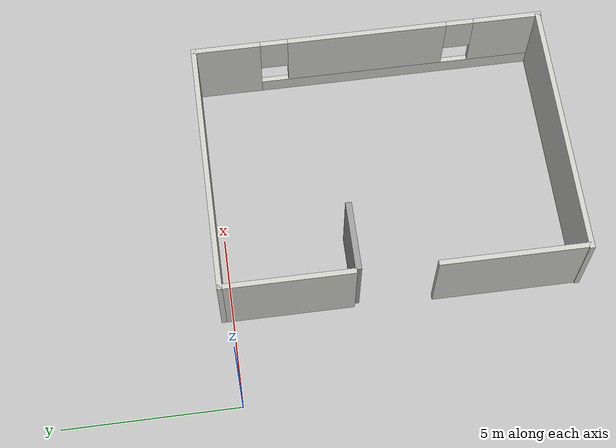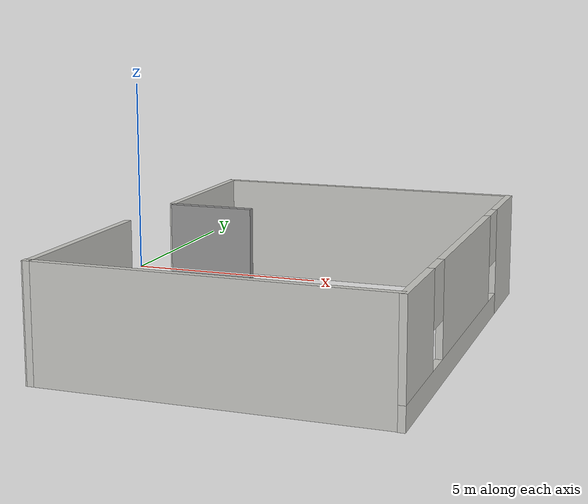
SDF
<?xml version='1.0'?>
<sdf version='1.6'>
  <model name='Conf_room'>
    <pose frame=''>6.2421 -4.79 0 0 -0 0</pose>
    <link name='Door_6'>
      <collision name='Door_6_Collision'>
        <geometry>
          <box>
            <size>2 0.17 2.5</size>
          </box>
        </geometry>
        <pose frame=''>0 0 1.25 0 -0 0</pose>
      </collision>
      <visual name='Door_6_Visual'>
        <pose frame=''>0 0 1.25 0 -0 0</pose>
        <geometry>
          <box>
            <size>2 0.17 2.5</size>
          </box>
        </geometry>
        <material>
          <script>
            <uri>file://media/materials/scripts/gazebo.material</uri>
            <name>Gazebo/Grey</name>
          </script>
        </material>
      </visual>
      <pose frame=''>-2.60836 1.29853 0 0 -0 0</pose>
    </link>
    <link name='Wall_10'>
      <collision name='Wall_10_Collision'>
        <geometry>
          <box>
            <size>4.25 0.15 2.5</size>
          </box>
        </geometry>
        <pose frame=''>0 0 1.25 0 -0 0</pose>
      </collision>
      <visual name='Wall_10_Visual'>
        <pose frame=''>0 0 1.25 0 -0 0</pose>
        <geometry>
          <box>
            <size>4.25 0.15 2.5</size>
          </box>
        </geometry>
        <material>
          <script>
            <uri>file://media/materials/scripts/gazebo.material</uri>
            <name>Gazebo/CeilingTiled</name>
          </script>
          <ambient>0 0.666667 1 1</ambient>
        </material>
        <meta>
          <layer>0</layer>
        </meta>
      </visual>
      <pose frame=''>-3.6913 -2.97997 0 0 -0 1.5708</pose>
    </link>
    <link name='Wall_2'>
      <collision name='Wall_2_Collision'>
        <geometry>
          <box>
            <size>7.5 0.15 2.5</size>
          </box>
        </geometry>
        <pose frame=''>0 0 1.25 0 -0 0</pose>
      </collision>
      <visual name='Wall_2_Visual'>
        <pose frame=''>0 0 1.25 0 -0 0</pose>
        <geometry>
          <box>
            <size>7.5 0.15 2.5</size>
          </box>
        </geometry>
        <material>
          <script>
            <uri>file://media/materials/scripts/gazebo.material</uri>
            <name>Gazebo/CeilingTiled</name>
          </script>
          <ambient>0 0.666667 1 1</ambient>
        </material>
        <meta>
          <layer>0</layer>
        </meta>
      </visual>
      <pose frame=''>0.0429 5.05 0 0 -0 0</pose>
    </link>
    <link name='Wall_4'>
      <collision name='Wall_4_Collision'>
        <geometry>
          <box>
            <size>7.5266 0.15 2.5</size>
          </box>
        </geometry>
        <pose frame=''>0 0 1.25 0 -0 0</pose>
      </collision>
      <visual name='Wall_4_Visual'>
        <pose frame=''>0 0 1.25 0 -0 0</pose>
        <geometry>
          <box>
            <size>7.5266 0.15 2.5</size>
          </box>
        </geometry>
        <material>
          <script>
            <uri>file://media/materials/scripts/gazebo.material</uri>
            <name>Gazebo/CeilingTiled</name>
          </script>
          <ambient>0 0.666667 1 1</ambient>
        </material>
        <meta>
          <layer>0</layer>
        </meta>
      </visual>
      <pose frame=''>-0.029601 -5.02997 0 0 -0 0</pose>
    </link>
    <link name='Wall_6'>
      <pose frame=''>3.7179 0 0 0 0 -1.5708</pose>
      <visual name='Wall_6_Visual_0'>
        <pose frame=''>-4.12422 0 1.25 0 -0 0</pose>
        <geometry>
          <box>
            <size>2.00155 0.15 2.5</size>
          </box>
        </geometry>
        <material>
          <script>
            <uri>file://media/materials/scripts/gazebo.material</uri>
            <name>Gazebo/CeilingTiled</name>
          </script>
          <ambient>0 0.666667 1 1</ambient>
        </material>
        <meta>
          <layer>0</layer>
        </meta>
      </visual>
      <collision name='Wall_6_Collision_0'>
        <geometry>
          <box>
            <size>2.00155 0.15 2.5</size>
          </box>
        </geometry>
        <pose frame=''>-4.12422 0 1.25 0 -0 0</pose>
      </collision>
      <visual name='Wall_6_Visual_1'>
        <pose frame=''>1.00078 0 0.25 0 -0 0</pose>
        <geometry>
          <box>
            <size>8.24845 0.15 0.5</size>
          </box>
        </geometry>
        <material>
          <script>
            <uri>file://media/materials/scripts/gazebo.material</uri>
            <name>Gazebo/CeilingTiled</name>
          </script>
          <ambient>0 0.666667 1 1</ambient>
        </material>
        <meta>
          <layer>0</layer>
        </meta>
      </visual>
      <collision name='Wall_6_Collision_1'>
        <geometry>
          <box>
            <size>8.24845 0.15 0.5</size>
          </box>
        </geometry>
        <pose frame=''>1.00078 0 0.25 0 -0 0</pose>
      </collision>
      <visual name='Wall_6_Visual_2'>
        <pose frame=''>-0.001024 0 1.5 0 -0 0</pose>
        <geometry>
          <box>
            <size>4.64485 0.15 2</size>
          </box>
        </geometry>
        <material>
          <script>
            <uri>file://media/materials/scripts/gazebo.material</uri>
            <name>Gazebo/CeilingTiled</name>
          </script>
          <ambient>0 0.666667 1 1</ambient>
        </material>
        <meta>
          <layer>0</layer>
        </meta>
      </visual>
      <collision name='Wall_6_Collision_2'>
        <geometry>
          <box>
            <size>4.64485 0.15 2</size>
          </box>
        </geometry>
        <pose frame=''>-0.001024 0 1.5 0 -0 0</pose>
      </collision>
      <visual name='Wall_6_Visual_3'>
        <pose frame=''>4.1232 0 1.5 0 -0 0</pose>
        <geometry>
          <box>
            <size>2.0036 0.15 2</size>
          </box>
        </geometry>
        <material>
          <script>
            <uri>file://media/materials/scripts/gazebo.material</uri>
            <name>Gazebo/CeilingTiled</name>
          </script>
          <ambient>0 0.666667 1 1</ambient>
        </material>
        <meta>
          <layer>0</layer>
        </meta>
      </visual>
      <collision name='Wall_6_Collision_3'>
        <geometry>
          <box>
            <size>2.0036 0.15 2</size>
          </box>
        </geometry>
        <pose frame=''>4.1232 0 1.5 0 -0 0</pose>
      </collision>
      <visual name='Wall_6_Visual_4'>
        <pose frame=''>-2.72345 0 1.9 0 -0 0</pose>
        <geometry>
          <box>
            <size>0.8 0.15 1.2</size>
          </box>
        </geometry>
        <material>
          <script>
            <uri>file://media/materials/scripts/gazebo.material</uri>
            <name>Gazebo/CeilingTiled</name>
          </script>
          <ambient>0 0.666667 1 1</ambient>
        </material>
        <meta>
          <layer>0</layer>
        </meta>
      </visual>
      <collision name='Wall_6_Collision_4'>
        <geometry>
          <box>
            <size>0.8 0.15 1.2</size>
          </box>
        </geometry>
        <pose frame=''>-2.72345 0 1.9 0 -0 0</pose>
      </collision>
      <visual name='Wall_6_Visual_5'>
        <pose frame=''>2.7214 0 1.9 0 -0 0</pose>
        <geometry>
          <box>
            <size>0.8 0.15 1.2</size>
          </box>
        </geometry>
        <material>
          <script>
            <uri>file://media/materials/scripts/gazebo.material</uri>
            <name>Gazebo/CeilingTiled</name>
          </script>
          <ambient>0 0.666667 1 1</ambient>
        </material>
        <meta>
          <layer>0</layer>
        </meta>
      </visual>
      <collision name='Wall_6_Collision_5'>
        <geometry>
          <box>
            <size>0.8 0.15 1.2</size>
          </box>
        </geometry>
        <pose frame=''>2.7214 0 1.9 0 -0 0</pose>
      </collision>
    </link>
    <link name='Wall_8'>
      <collision name='Wall_8_Collision'>
        <geometry>
          <box>
            <size>3.75 0.15 2.5</size>
          </box>
        </geometry>
        <pose frame=''>0 0 1.25 0 -0 0</pose>
      </collision>
      <visual name='Wall_8_Visual'>
        <pose frame=''>0 0 1.25 0 -0 0</pose>
        <geometry>
          <box>
            <size>3.75 0.15 2.5</size>
          </box>
        </geometry>
        <material>
          <script>
            <uri>file://media/materials/scripts/gazebo.material</uri>
            <name>Gazebo/CeilingTiled</name>
          </script>
          <ambient>0 0.666667 1 1</ambient>
        </material>
        <meta>
          <layer>0</layer>
        </meta>
      </visual>
      <pose frame=''>-3.6321 3.2234 0 0 0 -1.5708</pose>
    </link>
    <static>1</static>
  </model>
</sdf>
